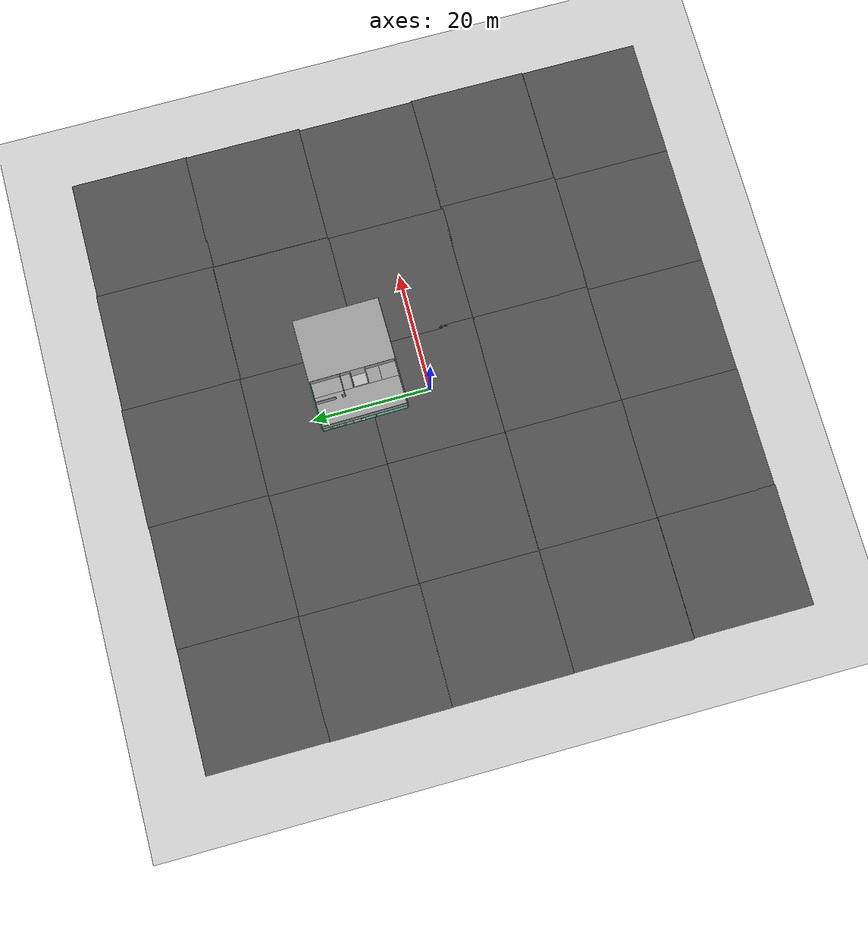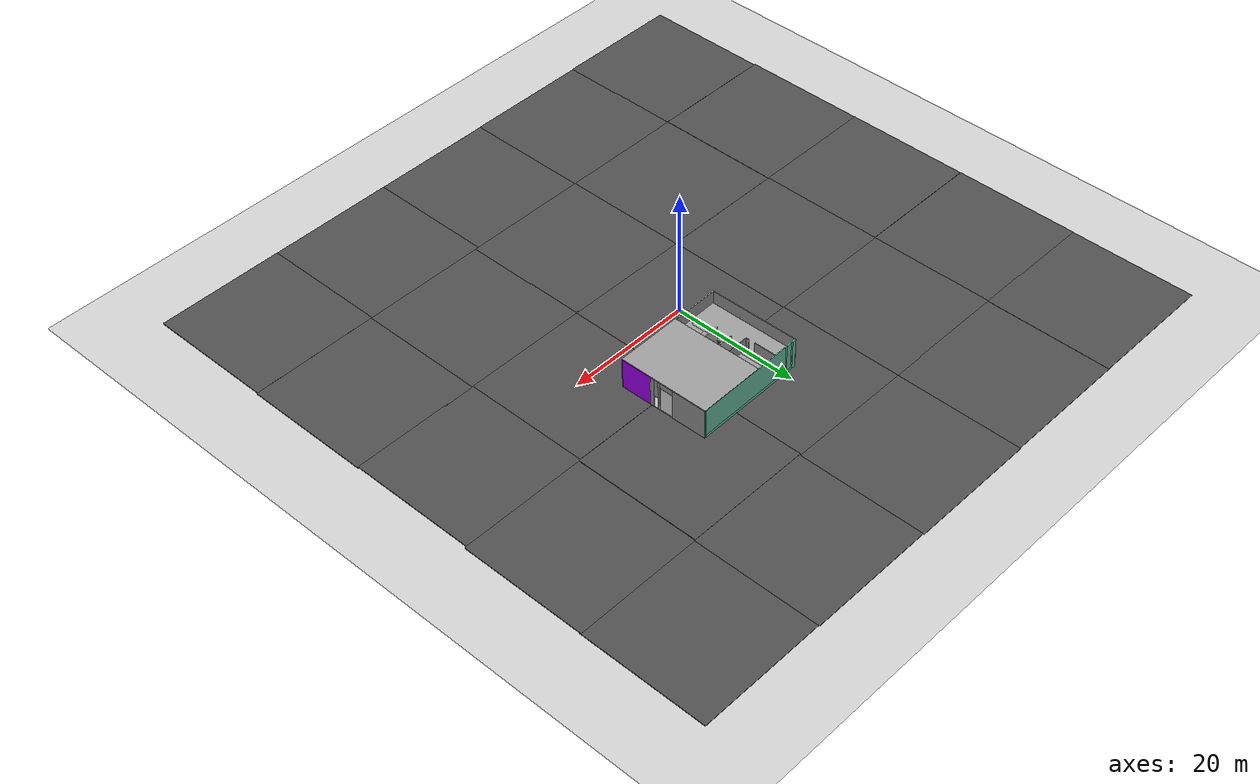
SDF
<sdf version="1.6">
 <world name="default">
  <light name="sun" type="directional">
   <pose>0 0 10 0 -0 0</pose>
   <diffuse>0.8 0.8 0.8 1</diffuse>
   <specular>0.2 0.2 0.2 1</specular>
   <attenuation>
    <range>1000</range>
    <constant>0.9</constant>
    <linear>0.01</linear>
    <quadratic>0.001</quadratic>
   </attenuation>
   <direction>-0.5 0.1 -0.9</direction>
   <spot><inner_angle>0</inner_angle><outer_angle>0</outer_angle><falloff>0</falloff></spot>
  </light>
  <model name="ground_plane">
   <static>1</static>
   <link name="link">
    <collision name="collision">
     <geometry><plane><normal>0 0 1</normal><size>100 100</size></plane></geometry>
     <surface><friction><ode><mu>100</mu><mu2>50</mu2></ode></friction></surface>
    </collision>
    <visual name="visual">
     <cast_shadows>0</cast_shadows>
     <geometry><plane><normal>0 0 1</normal><size>100 100</size></plane></geometry>
     <material>
      <script><uri>file://media/materials/scripts/gazebo.material</uri><name>Gazebo/Grey</name></script>
     </material>
    </visual>
   </link>
  </model>
  <gravity>0 0 -9.8</gravity>
  <magnetic_field>6e-06 2.3e-05 -4.2e-05</magnetic_field>
  <atmosphere type="adiabatic"/>
  <physics type="ode">
   <max_step_size>0.001</max_step_size>
   <real_time_factor>1</real_time_factor>
   <real_time_update_rate>1000</real_time_update_rate>
  </physics>
  <scene><ambient>0.4 0.4 0.4 1</ambient><background>0.7 0.7 0.7 1</background><shadows>1</shadows></scene>
  <spherical_coordinates>
   <surface_model>EARTH_WGS84</surface_model>
   <latitude_deg>0</latitude_deg>
   <longitude_deg>0</longitude_deg>
   <elevation>0</elevation>
   <heading_deg>0</heading_deg>
  </spherical_coordinates>
  <model name="asphalt_plane">
   <static>1</static>
   <link name="link">
    <collision name="collision"><geometry><box><size>20 20 0.1</size></box></geometry></collision>
    <visual name="visual">
     <cast_shadows>0</cast_shadows>
     <geometry><box><size>20 20 0.1</size></box></geometry>
     <material>
      <script>
       <uri>model://asphalt_plane/materials/scripts</uri>
       <uri>model://asphalt_plane/materials/textures</uri>
       <name>vrc/asphalt</name>
      </script>
     </material>
    </visual>
   </link>
   <pose>39.4659 -39.9201 0 0 -0 0</pose>
  </model>
  <model name="asphalt_plane_0">
   <static>1</static>
   <link name="link">
    <collision name="collision"><geometry><box><size>20 20 0.1</size></box></geometry></collision>
    <visual name="visual">
     <cast_shadows>0</cast_shadows>
     <geometry><box><size>20 20 0.1</size></box></geometry>
     <material>
      <script>
       <uri>model://asphalt_plane/materials/scripts</uri>
       <uri>model://asphalt_plane/materials/textures</uri>
       <name>vrc/asphalt</name>
      </script>
     </material>
    </visual>
   </link>
   <pose>19.4794 -39.8962 0 0 -0 0</pose>
  </model>
  <model name="asphalt_plane_1">
   <static>1</static>
   <link name="link">
    <collision name="collision"><geometry><box><size>20 20 0.1</size></box></geometry></collision>
    <visual name="visual">
     <cast_shadows>0</cast_shadows>
     <geometry><box><size>20 20 0.1</size></box></geometry>
     <material>
      <script>
       <uri>model://asphalt_plane/materials/scripts</uri>
       <uri>model://asphalt_plane/materials/textures</uri>
       <name>vrc/asphalt</name>
      </script>
     </material>
    </visual>
   </link>
   <pose>-0.493405 -39.8752 0 0 -0 0</pose>
  </model>
  <model name="asphalt_plane_2">
   <static>1</static>
   <link name="link">
    <collision name="collision"><geometry><box><size>20 20 0.1</size></box></geometry></collision>
    <visual name="visual">
     <cast_shadows>0</cast_shadows>
     <geometry><box><size>20 20 0.1</size></box></geometry>
     <material>
      <script>
       <uri>model://asphalt_plane/materials/scripts</uri>
       <uri>model://asphalt_plane/materials/textures</uri>
       <name>vrc/asphalt</name>
      </script>
     </material>
    </visual>
   </link>
   <pose>-19.8944 -39.9337 0 0 -0 0</pose>
  </model>
  <model name="asphalt_plane_3">
   <static>1</static>
   <link name="link">
    <collision name="collision"><geometry><box><size>20 20 0.1</size></box></geometry></collision>
    <visual name="visual">
     <cast_shadows>0</cast_shadows>
     <geometry><box><size>20 20 0.1</size></box></geometry>
     <material>
      <script>
       <uri>model://asphalt_plane/materials/scripts</uri>
       <uri>model://asphalt_plane/materials/textures</uri>
       <name>vrc/asphalt</name>
      </script>
     </material>
    </visual>
   </link>
   <pose>-39.7698 -40.0398 0 0 -0 0</pose>
  </model>
  <model name="asphalt_plane_4">
   <static>1</static>
   <link name="link">
    <collision name="collision"><geometry><box><size>20 20 0.1</size></box></geometry></collision>
    <visual name="visual">
     <cast_shadows>0</cast_shadows>
     <geometry><box><size>20 20 0.1</size></box></geometry>
     <material>
      <script>
       <uri>model://asphalt_plane/materials/scripts</uri>
       <uri>model://asphalt_plane/materials/textures</uri>
       <name>vrc/asphalt</name>
      </script>
     </material>
    </visual>
   </link>
   <pose>-39.9499 -20.0127 0 0 -0 0</pose>
  </model>
  <model name="asphalt_plane_5">
   <static>1</static>
   <link name="link">
    <collision name="collision"><geometry><box><size>20 20 0.1</size></box></geometry></collision>
    <visual name="visual">
     <cast_shadows>0</cast_shadows>
     <geometry><box><size>20 20 0.1</size></box></geometry>
     <material>
      <script>
       <uri>model://asphalt_plane/materials/scripts</uri>
       <uri>model://asphalt_plane/materials/textures</uri>
       <name>vrc/asphalt</name>
      </script>
     </material>
    </visual>
   </link>
   <pose>-39.9865 -0.075574 0 0 -0 0</pose>
  </model>
  <model name="asphalt_plane_6">
   <static>1</static>
   <link name="link">
    <collision name="collision"><geometry><box><size>20 20 0.1</size></box></geometry></collision>
    <visual name="visual">
     <cast_shadows>0</cast_shadows>
     <geometry><box><size>20 20 0.1</size></box></geometry>
     <material>
      <script>
       <uri>model://asphalt_plane/materials/scripts</uri>
       <uri>model://asphalt_plane/materials/textures</uri>
       <name>vrc/asphalt</name>
      </script>
     </material>
    </visual>
   </link>
   <pose>-40.0201 19.9683 0 0 -0 0</pose>
  </model>
  <model name="asphalt_plane_7">
   <static>1</static>
   <link name="link">
    <collision name="collision"><geometry><box><size>20 20 0.1</size></box></geometry></collision>
    <visual name="visual">
     <cast_shadows>0</cast_shadows>
     <geometry><box><size>20 20 0.1</size></box></geometry>
     <material>
      <script>
       <uri>model://asphalt_plane/materials/scripts</uri>
       <uri>model://asphalt_plane/materials/textures</uri>
       <name>vrc/asphalt</name>
      </script>
     </material>
    </visual>
   </link>
   <pose>-39.9603 39.8517 0 0 -0 0</pose>
  </model>
  <model name="asphalt_plane_8">
   <static>1</static>
   <link name="link">
    <collision name="collision"><geometry><box><size>20 20 0.1</size></box></geometry></collision>
    <visual name="visual">
     <cast_shadows>0</cast_shadows>
     <geometry><box><size>20 20 0.1</size></box></geometry>
     <material>
      <script>
       <uri>model://asphalt_plane/materials/scripts</uri>
       <uri>model://asphalt_plane/materials/textures</uri>
       <name>vrc/asphalt</name>
      </script>
     </material>
    </visual>
   </link>
   <pose>-19.9207 -19.9878 0 0 -0 0</pose>
  </model>
  <model name="asphalt_plane_9">
   <static>1</static>
   <link name="link">
    <collision name="collision"><geometry><box><size>20 20 0.1</size></box></geometry></collision>
    <visual name="visual">
     <cast_shadows>0</cast_shadows>
     <geometry><box><size>20 20 0.1</size></box></geometry>
     <material>
      <script>
       <uri>model://asphalt_plane/materials/scripts</uri>
       <uri>model://asphalt_plane/materials/textures</uri>
       <name>vrc/asphalt</name>
      </script>
     </material>
    </visual>
   </link>
   <pose>-20.0347 0.02392 0 0 -0 0</pose>
  </model>
  <model name="asphalt_plane_10">
   <static>1</static>
   <link name="link">
    <collision name="collision"><geometry><box><size>20 20 0.1</size></box></geometry></collision>
    <visual name="visual">
     <cast_shadows>0</cast_shadows>
     <geometry><box><size>20 20 0.1</size></box></geometry>
     <material>
      <script>
       <uri>model://asphalt_plane/materials/scripts</uri>
       <uri>model://asphalt_plane/materials/textures</uri>
       <name>vrc/asphalt</name>
      </script>
     </material>
    </visual>
   </link>
   <pose>-20.0686 19.9917 0 0 -0 0</pose>
  </model>
  <model name="asphalt_plane_11">
   <static>1</static>
   <link name="link">
    <collision name="collision"><geometry><box><size>20 20 0.1</size></box></geometry></collision>
    <visual name="visual">
     <cast_shadows>0</cast_shadows>
     <geometry><box><size>20 20 0.1</size></box></geometry>
     <material>
      <script>
       <uri>model://asphalt_plane/materials/scripts</uri>
       <uri>model://asphalt_plane/materials/textures</uri>
       <name>vrc/asphalt</name>
      </script>
     </material>
    </visual>
   </link>
   <pose>-19.9462 39.8802 0 0 -0 0</pose>
  </model>
  <model name="asphalt_plane_12">
   <static>1</static>
   <link name="link">
    <collision name="collision"><geometry><box><size>20 20 0.1</size></box></geometry></collision>
    <visual name="visual">
     <cast_shadows>0</cast_shadows>
     <geometry><box><size>20 20 0.1</size></box></geometry>
     <material>
      <script>
       <uri>model://asphalt_plane/materials/scripts</uri>
       <uri>model://asphalt_plane/materials/textures</uri>
       <name>vrc/asphalt</name>
      </script>
     </material>
    </visual>
   </link>
   <pose>0.035217 -19.9343 0 0 -0 0</pose>
  </model>
  <model name="asphalt_plane_13">
   <static>1</static>
   <link name="link">
    <collision name="collision"><geometry><box><size>20 20 0.1</size></box></geometry></collision>
    <visual name="visual">
     <cast_shadows>0</cast_shadows>
     <geometry><box><size>20 20 0.1</size></box></geometry>
     <material>
      <script>
       <uri>model://asphalt_plane/materials/scripts</uri>
       <uri>model://asphalt_plane/materials/textures</uri>
       <name>vrc/asphalt</name>
      </script>
     </material>
    </visual>
   </link>
   <pose>-0.034302 0.009218 0 0 -0 0</pose>
  </model>
  <model name="asphalt_plane_14">
   <static>1</static>
   <link name="link">
    <collision name="collision"><geometry><box><size>20 20 0.1</size></box></geometry></collision>
    <visual name="visual">
     <cast_shadows>0</cast_shadows>
     <geometry><box><size>20 20 0.1</size></box></geometry>
     <material>
      <script>
       <uri>model://asphalt_plane/materials/scripts</uri>
       <uri>model://asphalt_plane/materials/textures</uri>
       <name>vrc/asphalt</name>
      </script>
     </material>
    </visual>
   </link>
   <pose>-0.106234 19.978 0 0 -0 0</pose>
  </model>
  <model name="asphalt_plane_15">
   <static>1</static>
   <link name="link">
    <collision name="collision"><geometry><box><size>20 20 0.1</size></box></geometry></collision>
    <visual name="visual">
     <cast_shadows>0</cast_shadows>
     <geometry><box><size>20 20 0.1</size></box></geometry>
     <material>
      <script>
       <uri>model://asphalt_plane/materials/scripts</uri>
       <uri>model://asphalt_plane/materials/textures</uri>
       <name>vrc/asphalt</name>
      </script>
     </material>
    </visual>
   </link>
   <pose>-0.059808 39.9742 0 0 -0 0</pose>
  </model>
  <model name="asphalt_plane_16">
   <static>1</static>
   <link name="link">
    <collision name="collision"><geometry><box><size>20 20 0.1</size></box></geometry></collision>
    <visual name="visual">
     <cast_shadows>0</cast_shadows>
     <geometry><box><size>20 20 0.1</size></box></geometry>
     <material>
      <script>
       <uri>model://asphalt_plane/materials/scripts</uri>
       <uri>model://asphalt_plane/materials/textures</uri>
       <name>vrc/asphalt</name>
      </script>
     </material>
    </visual>
   </link>
   <pose>39.6059 -19.911 0 0 -0 0</pose>
  </model>
  <model name="asphalt_plane_17">
   <static>1</static>
   <link name="link">
    <collision name="collision"><geometry><box><size>20 20 0.1</size></box></geometry></collision>
    <visual name="visual">
     <cast_shadows>0</cast_shadows>
     <geometry><box><size>20 20 0.1</size></box></geometry>
     <material>
      <script>
       <uri>model://asphalt_plane/materials/scripts</uri>
       <uri>model://asphalt_plane/materials/textures</uri>
       <name>vrc/asphalt</name>
      </script>
     </material>
    </visual>
   </link>
   <pose>19.9136 -20.0232 0 0 -0 0</pose>
  </model>
  <model name="asphalt_plane_18">
   <static>1</static>
   <link name="link">
    <collision name="collision"><geometry><box><size>20 20 0.1</size></box></geometry></collision>
    <visual name="visual">
     <cast_shadows>0</cast_shadows>
     <geometry><box><size>20 20 0.1</size></box></geometry>
     <material>
      <script>
       <uri>model://asphalt_plane/materials/scripts</uri>
       <uri>model://asphalt_plane/materials/textures</uri>
       <name>vrc/asphalt</name>
      </script>
     </material>
    </visual>
   </link>
   <pose>39.4513 -0.05702 0 0 -0 0</pose>
  </model>
  <model name="asphalt_plane_19">
   <static>1</static>
   <link name="link">
    <collision name="collision"><geometry><box><size>20 20 0.1</size></box></geometry></collision>
    <visual name="visual">
     <cast_shadows>0</cast_shadows>
     <geometry><box><size>20 20 0.1</size></box></geometry>
     <material>
      <script>
       <uri>model://asphalt_plane/materials/scripts</uri>
       <uri>model://asphalt_plane/materials/textures</uri>
       <name>vrc/asphalt</name>
      </script>
     </material>
    </visual>
   </link>
   <pose>19.534 -0.225439 0 0 -0 0</pose>
  </model>
  <model name="asphalt_plane_20">
   <static>1</static>
   <link name="link">
    <collision name="collision"><geometry><box><size>20 20 0.1</size></box></geometry></collision>
    <visual name="visual">
     <cast_shadows>0</cast_shadows>
     <geometry><box><size>20 20 0.1</size></box></geometry>
     <material>
      <script>
       <uri>model://asphalt_plane/materials/scripts</uri>
       <uri>model://asphalt_plane/materials/textures</uri>
       <name>vrc/asphalt</name>
      </script>
     </material>
    </visual>
   </link>
   <pose>19.7215 19.81 0 0 -0 0</pose>
  </model>
  <model name="asphalt_plane_21">
   <static>1</static>
   <link name="link">
    <collision name="collision"><geometry><box><size>20 20 0.1</size></box></geometry></collision>
    <visual name="visual">
     <cast_shadows>0</cast_shadows>
     <geometry><box><size>20 20 0.1</size></box></geometry>
     <material>
      <script>
       <uri>model://asphalt_plane/materials/scripts</uri>
       <uri>model://asphalt_plane/materials/textures</uri>
       <name>vrc/asphalt</name>
      </script>
     </material>
    </visual>
   </link>
   <pose>39.7617 19.8774 0 0 -0 0</pose>
  </model>
  <model name="asphalt_plane_22">
   <static>1</static>
   <link name="link">
    <collision name="collision"><geometry><box><size>20 20 0.1</size></box></geometry></collision>
    <visual name="visual">
     <cast_shadows>0</cast_shadows>
     <geometry><box><size>20 20 0.1</size></box></geometry>
     <material>
      <script>
       <uri>model://asphalt_plane/materials/scripts</uri>
       <uri>model://asphalt_plane/materials/textures</uri>
       <name>vrc/asphalt</name>
      </script>
     </material>
    </visual>
   </link>
   <pose>19.8697 39.8274 0 0 -0 0</pose>
  </model>
  <model name="asphalt_plane_23">
   <static>1</static>
   <link name="link">
    <collision name="collision"><geometry><box><size>20 20 0.1</size></box></geometry></collision>
    <visual name="visual">
     <cast_shadows>0</cast_shadows>
     <geometry><box><size>20 20 0.1</size></box></geometry>
     <material>
      <script>
       <uri>model://asphalt_plane/materials/scripts</uri>
       <uri>model://asphalt_plane/materials/textures</uri>
       <name>vrc/asphalt</name>
      </script>
     </material>
    </visual>
   </link>
   <pose>39.8376 39.6964 0 0 -0 0</pose>
  </model>
  <model name="osrf_elevator">
   <link name="Wall_0">
    <pose>-7.17647 0.013004 0 0 -0 1.57174</pose>
    <visual name="Wall_0_Visual_0">
     <meta><layer>0</layer></meta>
     <pose>-8.72596 0 2.4385 0 -0 0</pose>
     <geometry><box><size>0.663656 0.15 4.877</size></box></geometry>
     <material>
      <script><uri>file://media/materials/scripts/gazebo.material</uri><name>Gazebo/Grey</name></script>
      <ambient>0.435294 0.796078 0.67451 1</ambient>
     </material>
    </visual>
    <collision name="Wall_0_Collision_0">
     <geometry><box><size>0.663656 0.15 4.877</size></box></geometry>
     <pose>-8.72596 0 2.4385 0 -0 0</pose>
    </collision>
    <visual name="Wall_0_Visual_1">
     <meta><layer>0</layer></meta>
     <pose>0.331828 0 0.25 0 -0 0</pose>
     <geometry><box><size>17.4519 0.15 0.5</size></box></geometry>
     <material>
      <script><uri>file://media/materials/scripts/gazebo.material</uri><name>Gazebo/Grey</name></script>
      <ambient>0.435294 0.796078 0.67451 1</ambient>
     </material>
    </visual>
    <collision name="Wall_0_Collision_1">
     <geometry><box><size>17.4519 0.15 0.5</size></box></geometry>
     <pose>0.331828 0 0.25 0 -0 0</pose>
    </collision>
    <visual name="Wall_0_Visual_2">
     <meta><layer>0</layer></meta>
     <pose>-7.67281 0 2.6885 0 -0 0</pose>
     <geometry><box><size>0.816657 0.15 4.377</size></box></geometry>
     <material>
      <script><uri>file://media/materials/scripts/gazebo.material</uri><name>Gazebo/Grey</name></script>
      <ambient>0.435294 0.796078 0.67451 1</ambient>
     </material>
    </visual>
    <collision name="Wall_0_Collision_2">
     <geometry><box><size>0.816657 0.15 4.377</size></box></geometry>
     <pose>-7.67281 0 2.6885 0 -0 0</pose>
    </collision>
    <visual name="Wall_0_Visual_3">
     <meta><layer>0</layer></meta>
     <pose>1.05709 0 2.6885 0 -0 0</pose>
     <geometry><box><size>16.0014 0.15 4.377</size></box></geometry>
     <material>
      <script><uri>file://media/materials/scripts/gazebo.material</uri><name>Gazebo/Grey</name></script>
      <ambient>0.435294 0.796078 0.67451 1</ambient>
     </material>
    </visual>
    <collision name="Wall_0_Collision_3">
     <geometry><box><size>16.0014 0.15 4.377</size></box></geometry>
     <pose>1.05709 0 2.6885 0 -0 0</pose>
    </collision>
    <visual name="Wall_0_Visual_4">
     <meta><layer>0</layer></meta>
     <pose>-8.23763 0 3.6885 0 -0 0</pose>
     <geometry><box><size>0.313 0.15 2.377</size></box></geometry>
     <material>
      <script><uri>file://media/materials/scripts/gazebo.material</uri><name>Gazebo/Grey</name></script>
      <ambient>0.435294 0.796078 0.67451 1</ambient>
     </material>
    </visual>
    <collision name="Wall_0_Collision_4">
     <geometry><box><size>0.313 0.15 2.377</size></box></geometry>
     <pose>-8.23763 0 3.6885 0 -0 0</pose>
    </collision>
    <visual name="Wall_0_Visual_5">
     <meta><layer>0</layer></meta>
     <pose>-7.10405 0 3.6885 0 -0 0</pose>
     <geometry><box><size>0.320861 0.15 2.377</size></box></geometry>
     <material>
      <script><uri>file://media/materials/scripts/gazebo.material</uri><name>Gazebo/Grey</name></script>
      <ambient>0.435294 0.796078 0.67451 1</ambient>
     </material>
    </visual>
    <collision name="Wall_0_Collision_5">
     <geometry><box><size>0.320861 0.15 2.377</size></box></geometry>
     <pose>-7.10405 0 3.6885 0 -0 0</pose>
    </collision>
   </link>
   <link name="Wall_10">
    <pose>3.11003 -4.9485 0 0 -0 0</pose>
    <visual name="Wall_10_Visual_0">
     <meta><layer>0</layer></meta>
     <pose>-1.73626 0 1.3715 0 -0 0</pose>
     <geometry><box><size>4.52747 0.15 2.743</size></box></geometry>
     <material>
      <script><uri>file://media/materials/scripts/gazebo.material</uri><name>Gazebo/Grey</name></script>
      <ambient>0 0.666667 0 1</ambient>
     </material>
    </visual>
    <collision name="Wall_10_Collision_0">
     <geometry><box><size>4.52747 0.15 2.743</size></box></geometry>
     <pose>-1.73626 0 1.3715 0 -0 0</pose>
    </collision>
    <visual name="Wall_10_Visual_1">
     <meta><layer>0</layer></meta>
     <pose>2.58694 0 1.3715 0 -0 0</pose>
     <geometry><box><size>2.82611 0.15 2.743</size></box></geometry>
     <material>
      <script><uri>file://media/materials/scripts/gazebo.material</uri><name>Gazebo/Grey</name></script>
      <ambient>0 0.666667 0 1</ambient>
     </material>
    </visual>
    <collision name="Wall_10_Collision_1">
     <geometry><box><size>2.82611 0.15 2.743</size></box></geometry>
     <pose>2.58694 0 1.3715 0 -0 0</pose>
    </collision>
    <visual name="Wall_10_Visual_2">
     <meta><layer>0</layer></meta>
     <pose>0.85068 0 2.3715 0 -0 0</pose>
     <geometry><box><size>0.646413 0.15 0.743</size></box></geometry>
     <material>
      <script><uri>file://media/materials/scripts/gazebo.material</uri><name>Gazebo/Grey</name></script>
      <ambient>0 0.666667 0 1</ambient>
     </material>
    </visual>
    <collision name="Wall_10_Collision_2">
     <geometry><box><size>0.646413 0.15 0.743</size></box></geometry>
     <pose>0.85068 0 2.3715 0 -0 0</pose>
    </collision>
   </link>
   <link name="Wall_14">
    <pose>1.83803 -6.9775 0 0 -0 1.5708</pose>
    <visual name="Wall_14_Visual_0">
     <meta><layer>0</layer></meta>
     <pose>-0.387674 0 1.3715 0 -0 0</pose>
     <geometry><box><size>3.41138 0.15 2.743</size></box></geometry>
     <material>
      <script><uri>file://media/materials/scripts/gazebo.material</uri><name>Gazebo/Grey</name></script>
      <ambient>1 1 1 1</ambient>
     </material>
    </visual>
    <collision name="Wall_14_Collision_0">
     <geometry><box><size>3.41138 0.15 2.743</size></box></geometry>
     <pose>-0.387674 0 1.3715 0 -0 0</pose>
    </collision>
    <visual name="Wall_14_Visual_1">
     <meta><layer>0</layer></meta>
     <pose>2.00133 0 1.3715 0 -0 0</pose>
     <geometry><box><size>0.184063 0.15 2.743</size></box></geometry>
     <material>
      <script><uri>file://media/materials/scripts/gazebo.material</uri><name>Gazebo/Grey</name></script>
      <ambient>1 1 1 1</ambient>
     </material>
    </visual>
    <collision name="Wall_14_Collision_1">
     <geometry><box><size>0.184063 0.15 2.743</size></box></geometry>
     <pose>2.00133 0 1.3715 0 -0 0</pose>
    </collision>
    <visual name="Wall_14_Visual_2">
     <meta><layer>0</layer></meta>
     <pose>1.61366 0 2.3715 0 -0 0</pose>
     <geometry><box><size>0.591285 0.15 0.743</size></box></geometry>
     <material>
      <script><uri>file://media/materials/scripts/gazebo.material</uri><name>Gazebo/Grey</name></script>
      <ambient>1 1 1 1</ambient>
     </material>
    </visual>
    <collision name="Wall_14_Collision_2">
     <geometry><box><size>0.591285 0.15 0.743</size></box></geometry>
     <pose>1.61366 0 2.3715 0 -0 0</pose>
    </collision>
   </link>
   <link name="Wall_16">
    <collision name="Wall_16_Collision">
     <geometry><box><size>5.12727 0.15 2.743</size></box></geometry>
     <pose>0 0 1.3715 0 -0 0</pose>
    </collision>
    <visual name="Wall_16_Visual">
     <meta><layer>0</layer></meta>
     <pose>0 0 1.3715 0 -0 0</pose>
     <geometry><box><size>5.12727 0.15 2.743</size></box></geometry>
     <material>
      <script><uri>file://media/materials/scripts/gazebo.material</uri><name>Gazebo/Grey</name></script>
      <ambient>1 1 1 1</ambient>
     </material>
    </visual>
    <pose>-4.68247 -1.4425 0 0 -0 0</pose>
   </link>
   <link name="Wall_17">
    <pose>-2.19097 -3.185 0 0 0 -1.56907</pose>
    <visual name="Wall_17_Visual_0">
     <meta><layer>0</layer></meta>
     <pose>-1.22855 0 1.3715 0 -0 0</pose>
     <geometry><box><size>1.17851 0.15 2.743</size></box></geometry>
     <material>
      <script><uri>file://media/materials/scripts/gazebo.material</uri><name>Gazebo/Grey</name></script>
      <ambient>1 1 1 1</ambient>
     </material>
    </visual>
    <collision name="Wall_17_Collision_0">
     <geometry><box><size>1.17851 0.15 2.743</size></box></geometry>
     <pose>-1.22855 0 1.3715 0 -0 0</pose>
    </collision>
    <visual name="Wall_17_Visual_1">
     <meta><layer>0</layer></meta>
     <pose>0.886237 0 1.3715 0 -0 0</pose>
     <geometry><box><size>1.86314 0.15 2.743</size></box></geometry>
     <material>
      <script><uri>file://media/materials/scripts/gazebo.material</uri><name>Gazebo/Grey</name></script>
      <ambient>1 1 1 1</ambient>
     </material>
    </visual>
    <collision name="Wall_17_Collision_1">
     <geometry><box><size>1.86314 0.15 2.743</size></box></geometry>
     <pose>0.886237 0 1.3715 0 -0 0</pose>
    </collision>
    <visual name="Wall_17_Visual_2">
     <meta><layer>0</layer></meta>
     <pose>1.18873 0 1.3715 0 -0 0</pose>
     <geometry><box><size>1.25815 0.15 2.743</size></box></geometry>
     <material>
      <script><uri>file://media/materials/scripts/gazebo.material</uri><name>Gazebo/Grey</name></script>
      <ambient>1 1 1 1</ambient>
     </material>
    </visual>
    <collision name="Wall_17_Collision_2">
     <geometry><box><size>1.25815 0.15 2.743</size></box></geometry>
     <pose>1.18873 0 1.3715 0 -0 0</pose>
    </collision>
    <visual name="Wall_17_Visual_3">
     <meta><layer>0</layer></meta>
     <pose>-0.345304 0 2.3715 0 -0 0</pose>
     <geometry><box><size>0.587991 0.15 0.743</size></box></geometry>
     <material>
      <script><uri>file://media/materials/scripts/gazebo.material</uri><name>Gazebo/Grey</name></script>
      <ambient>1 1 1 1</ambient>
     </material>
    </visual>
    <collision name="Wall_17_Collision_3">
     <geometry><box><size>0.587991 0.15 0.743</size></box></geometry>
     <pose>-0.345304 0 2.3715 0 -0 0</pose>
    </collision>
   </link>
   <link name="Wall_18">
    <collision name="Wall_18_Collision">
     <geometry><box><size>5 0.15 2.743</size></box></geometry>
     <pose>0 0 1.3715 0 -0 0</pose>
    </collision>
    <visual name="Wall_18_Visual">
     <meta><layer>0</layer></meta>
     <pose>0 0 1.3715 0 -0 0</pose>
     <geometry><box><size>5 0.15 2.743</size></box></geometry>
     <material>
      <script><uri>file://media/materials/scripts/gazebo.material</uri><name>Gazebo/Grey</name></script>
      <ambient>1 1 1 1</ambient>
     </material>
    </visual>
    <pose>-4.61297 -4.9275 0 0 -0 3.14159</pose>
   </link>
   <link name="Wall_20">
    <collision name="Wall_20_Collision">
     <geometry><box><size>2.88731 0.15 2.743</size></box></geometry>
     <pose>0 0 1.3715 0 -0 0</pose>
    </collision>
    <visual name="Wall_20_Visual">
     <meta><layer>0</layer></meta>
     <pose>0 0 1.3715 0 -0 0</pose>
     <geometry><box><size>2.88731 0.15 2.743</size></box></geometry>
     <material>
      <script><uri>file://media/materials/scripts/gazebo.material</uri><name>Gazebo/Grey</name></script>
      <ambient>1 1 1 1</ambient>
     </material>
    </visual>
    <pose>5.74253 1.037 0 0 0 -3.1383</pose>
   </link>
   <link name="Wall_21">
    <pose>4.37403 -1.8925 0 0 0 -1.5708</pose>
    <visual name="Wall_21_Visual_0">
     <meta><layer>0</layer></meta>
     <pose>-2.34405 0 1.3715 0 -0 0</pose>
     <geometry><box><size>1.3119 0.15 2.743</size></box></geometry>
     <material>
      <script><uri>file://media/materials/scripts/gazebo.material</uri><name>Gazebo/Grey</name></script>
      <ambient>1 1 1 1</ambient>
     </material>
    </visual>
    <collision name="Wall_21_Collision_0">
     <geometry><box><size>1.3119 0.15 2.743</size></box></geometry>
     <pose>-2.34405 0 1.3715 0 -0 0</pose>
    </collision>
    <visual name="Wall_21_Visual_1">
     <meta><layer>0</layer></meta>
     <pose>-0.970323 0 1.3715 0 -0 0</pose>
     <geometry><box><size>0.213619 0.15 2.743</size></box></geometry>
     <material>
      <script><uri>file://media/materials/scripts/gazebo.material</uri><name>Gazebo/Grey</name></script>
      <ambient>1 1 1 1</ambient>
     </material>
    </visual>
    <collision name="Wall_21_Collision_1">
     <geometry><box><size>0.213619 0.15 2.743</size></box></geometry>
     <pose>-0.970323 0 1.3715 0 -0 0</pose>
    </collision>
    <visual name="Wall_21_Visual_2">
     <meta><layer>0</layer></meta>
     <pose>0.938748 0 1.3715 0 -0 0</pose>
     <geometry><box><size>2.36558 0.15 2.743</size></box></geometry>
     <material>
      <script><uri>file://media/materials/scripts/gazebo.material</uri><name>Gazebo/Grey</name></script>
      <ambient>1 1 1 1</ambient>
     </material>
    </visual>
    <collision name="Wall_21_Collision_2">
     <geometry><box><size>2.36558 0.15 2.743</size></box></geometry>
     <pose>0.938748 0 1.3715 0 -0 0</pose>
    </collision>
    <visual name="Wall_21_Visual_3">
     <meta><layer>0</layer></meta>
     <pose>2.89346 0 1.3715 0 -0 0</pose>
     <geometry><box><size>0.213086 0.15 2.743</size></box></geometry>
     <material>
      <script><uri>file://media/materials/scripts/gazebo.material</uri><name>Gazebo/Grey</name></script>
      <ambient>1 1 1 1</ambient>
     </material>
    </visual>
    <collision name="Wall_21_Collision_3">
     <geometry><box><size>0.213086 0.15 2.743</size></box></geometry>
     <pose>2.89346 0 1.3715 0 -0 0</pose>
    </collision>
    <visual name="Wall_21_Visual_4">
     <meta><layer>0</layer></meta>
     <pose>-1.38262 0 2.3715 0 -0 0</pose>
     <geometry><box><size>0.610969 0.15 0.743</size></box></geometry>
     <material>
      <script><uri>file://media/materials/scripts/gazebo.material</uri><name>Gazebo/Grey</name></script>
      <ambient>1 1 1 1</ambient>
     </material>
    </visual>
    <collision name="Wall_21_Collision_4">
     <geometry><box><size>0.610969 0.15 0.743</size></box></geometry>
     <pose>-1.38262 0 2.3715 0 -0 0</pose>
    </collision>
    <visual name="Wall_21_Visual_5">
     <meta><layer>0</layer></meta>
     <pose>-0.553779 0 2.3715 0 -0 0</pose>
     <geometry><box><size>0.61947 0.15 0.743</size></box></geometry>
     <material>
      <script><uri>file://media/materials/scripts/gazebo.material</uri><name>Gazebo/Grey</name></script>
      <ambient>1 1 1 1</ambient>
     </material>
    </visual>
    <collision name="Wall_21_Collision_5">
     <geometry><box><size>0.61947 0.15 0.743</size></box></geometry>
     <pose>-0.553779 0 2.3715 0 -0 0</pose>
    </collision>
    <visual name="Wall_21_Visual_6">
     <meta><layer>0</layer></meta>
     <pose>2.45423 0 2.3715 0 -0 0</pose>
     <geometry><box><size>0.665375 0.15 0.743</size></box></geometry>
     <material>
      <script><uri>file://media/materials/scripts/gazebo.material</uri><name>Gazebo/Grey</name></script>
      <ambient>1 1 1 1</ambient>
     </material>
    </visual>
    <collision name="Wall_21_Collision_6">
     <geometry><box><size>0.665375 0.15 0.743</size></box></geometry>
     <pose>2.45423 0 2.3715 0 -0 0</pose>
    </collision>
   </link>
   <link name="Wall_23">
    <collision name="Wall_23_Collision">
     <geometry><box><size>2.75 0.15 2.743</size></box></geometry>
     <pose>0 0 1.3715 0 -0 0</pose>
    </collision>
    <visual name="Wall_23_Visual">
     <meta><layer>0</layer></meta>
     <pose>0 0 1.3715 0 -0 0</pose>
     <geometry><box><size>2.75 0.15 2.743</size></box></geometry>
     <material>
      <script><uri>file://media/materials/scripts/gazebo.material</uri><name>Gazebo/Grey</name></script>
      <ambient>1 1 1 1</ambient>
     </material>
    </visual>
    <pose>5.74203 -2.9565 0 0 -0 0</pose>
   </link>
   <link name="Wall_25">
    <collision name="Wall_25_Collision">
     <geometry><box><size>2.75 0.15 2.743</size></box></geometry>
     <pose>0 0 1.3715 0 -0 0</pose>
    </collision>
    <visual name="Wall_25_Visual">
     <meta><layer>0</layer></meta>
     <pose>0 0 1.3715 0 -0 0</pose>
     <geometry><box><size>2.75 0.15 2.743</size></box></geometry>
     <material>
      <script><uri>file://media/materials/scripts/gazebo.material</uri><name>Gazebo/Grey</name></script>
      <ambient>1 1 1 1</ambient>
     </material>
    </visual>
    <pose>5.76203 -0.932496 0 0 -0 0</pose>
   </link>
   <link name="Wall_27">
    <collision name="Wall_27_Collision">
     <geometry><box><size>4 0.15 2.743</size></box></geometry>
     <pose>0 0 1.3715 0 -0 0</pose>
    </collision>
    <visual name="Wall_27_Visual">
     <meta><layer>0</layer></meta>
     <pose>0 0 1.3715 0 -0 0</pose>
     <geometry><box><size>4 0.15 2.743</size></box></geometry>
     <material>
      <script><uri>file://media/materials/scripts/gazebo.material</uri><name>Gazebo/Grey</name></script>
      <ambient>1 1 1 1</ambient>
     </material>
    </visual>
    <pose>4.75503 -7.0125 0 0 -0 1.5708</pose>
   </link>
   <link name="Wall_29">
    <collision name="Wall_29_Collision">
     <geometry><box><size>1.39187 0.15 4.877</size></box></geometry>
     <pose>0 0 2.4385 0 -0 0</pose>
    </collision>
    <visual name="Wall_29_Visual">
     <meta><layer>0</layer></meta>
     <pose>0 0 2.4385 0 -0 0</pose>
     <geometry><box><size>1.39187 0.15 4.877</size></box></geometry>
     <material>
      <script><uri>file://media/materials/scripts/gazebo.material</uri><name>Gazebo/Grey</name></script>
      <ambient>0.996078 0.47451 0.0196078 1</ambient>
     </material>
    </visual>
    <pose>-6.49697 4.1045 0 0 -0 0</pose>
   </link>
   <link name="Wall_30">
    <collision name="Wall_30_Collision">
     <geometry><box><size>3 0.15 4.877</size></box></geometry>
     <pose>0 0 2.4385 0 -0 0</pose>
    </collision>
    <visual name="Wall_30_Visual">
     <meta><layer>0</layer></meta>
     <pose>0 0 2.4385 0 -0 0</pose>
     <geometry><box><size>3 0.15 4.877</size></box></geometry>
     <material>
      <script><uri>file://media/materials/scripts/gazebo.material</uri><name>Gazebo/Grey</name></script>
      <ambient>1 1 1 1</ambient>
     </material>
    </visual>
    <pose>-5.87597 5.5295 0 0 -0 1.5708</pose>
   </link>
   <link name="Wall_31">
    <pose>-6.50397 6.9525 0 0 0 -3.13841</pose>
    <visual name="Wall_31_Visual_0">
     <meta><layer>0</layer></meta>
     <pose>-0.567544 0 2.4385 0 -0 0</pose>
     <geometry><box><size>0.271575 0.15 4.877</size></box></geometry>
     <material>
      <script><uri>file://media/materials/scripts/gazebo.material</uri><name>Gazebo/Grey</name></script>
      <ambient>1 1 1 1</ambient>
     </material>
    </visual>
    <collision name="Wall_31_Collision_0">
     <geometry><box><size>0.271575 0.15 4.877</size></box></geometry>
     <pose>-0.567544 0 2.4385 0 -0 0</pose>
    </collision>
    <visual name="Wall_31_Visual_1">
     <meta><layer>0</layer></meta>
     <pose>0.441678 0 2.4385 0 -0 0</pose>
     <geometry><box><size>0.523307 0.15 4.877</size></box></geometry>
     <material>
      <script><uri>file://media/materials/scripts/gazebo.material</uri><name>Gazebo/Grey</name></script>
      <ambient>1 1 1 1</ambient>
     </material>
    </visual>
    <collision name="Wall_31_Collision_1">
     <geometry><box><size>0.523307 0.15 4.877</size></box></geometry>
     <pose>0.441678 0 2.4385 0 -0 0</pose>
    </collision>
    <visual name="Wall_31_Visual_3">
     <meta><layer>0</layer></meta>
     <pose>-0.125866 0 3.4385 0 -0 0</pose>
     <geometry><box><size>0.611781 0.15 2.877</size></box></geometry>
     <material>
      <script><uri>file://media/materials/scripts/gazebo.material</uri><name>Gazebo/Grey</name></script>
      <ambient>1 1 1 1</ambient>
     </material>
    </visual>
    <collision name="Wall_31_Collision_3">
     <geometry><box><size>0.611781 0.15 2.877</size></box></geometry>
     <pose>-0.125866 0 3.4385 0 -0 0</pose>
    </collision>
   </link>
   <link name="Wall_35">
    <pose>-2.50997 8.9955 0 0 -0 0</pose>
    <visual name="Wall_35_Visual_0">
     <meta><layer>0</layer></meta>
     <pose>-1.92197 0 2.4385 0 -0 0</pose>
     <geometry><box><size>5.65606 0.15 4.877</size></box></geometry>
     <material>
      <script><uri>file://media/materials/scripts/gazebo.material</uri><name>Gazebo/Grey</name></script>
      <ambient>1 1 1 1</ambient>
     </material>
    </visual>
    <collision name="Wall_35_Collision_0">
     <geometry><box><size>5.65606 0.15 4.877</size></box></geometry>
     <pose>-1.92197 0 2.4385 0 -0 0</pose>
    </collision>
    <visual name="Wall_35_Visual_1">
     <meta><layer>0</layer></meta>
     <pose>3.22541 0 2.4385 0 -0 0</pose>
     <geometry><box><size>0.406701 0.15 4.877</size></box></geometry>
     <material>
      <script><uri>file://media/materials/scripts/gazebo.material</uri><name>Gazebo/Grey</name></script>
      <ambient>1 1 1 1</ambient>
     </material>
    </visual>
    <collision name="Wall_35_Collision_1">
     <geometry><box><size>0.406701 0.15 4.877</size></box></geometry>
     <pose>3.22541 0 2.4385 0 -0 0</pose>
    </collision>
    <visual name="Wall_35_Visual_2">
     <meta><layer>0</layer></meta>
     <pose>4.40208 0 2.4385 0 -0 0</pose>
     <geometry><box><size>0.695843 0.15 4.877</size></box></geometry>
     <material>
      <script><uri>file://media/materials/scripts/gazebo.material</uri><name>Gazebo/Grey</name></script>
      <ambient>1 1 1 1</ambient>
     </material>
    </visual>
    <collision name="Wall_35_Collision_2">
     <geometry><box><size>0.695843 0.15 4.877</size></box></geometry>
     <pose>4.40208 0 2.4385 0 -0 0</pose>
    </collision>
    <visual name="Wall_35_Visual_5">
     <meta><layer>0</layer></meta>
     <pose>3.74146 0 3.4385 0 -0 0</pose>
     <geometry><box><size>0.625391 0.15 2.877</size></box></geometry>
     <material>
      <script><uri>file://media/materials/scripts/gazebo.material</uri><name>Gazebo/Grey</name></script>
      <ambient>1 1 1 1</ambient>
     </material>
    </visual>
    <collision name="Wall_35_Collision_5">
     <geometry><box><size>0.625391 0.15 2.877</size></box></geometry>
     <pose>3.74146 0 3.4385 0 -0 0</pose>
    </collision>
    <visual name="Wall_35_Visual_6">
     <meta><layer>0</layer></meta>
     <pose>1.96406 0 4.4385 0 -0 0</pose>
     <geometry><box><size>2.116 0.15 0.877</size></box></geometry>
     <material>
      <script><uri>file://media/materials/scripts/gazebo.material</uri><name>Gazebo/Grey</name></script>
      <ambient>1 1 1 1</ambient>
     </material>
    </visual>
    <collision name="Wall_35_Collision_6">
     <geometry><box><size>2.116 0.15 0.877</size></box></geometry>
     <pose>1.96406 0 4.4385 0 -0 0</pose>
    </collision>
   </link>
   <link name="Wall_36">
    <collision name="Wall_36_Collision">
     <geometry><box><size>5.17 0.15 4.877</size></box></geometry>
     <pose>0 0 2.4385 0 -0 0</pose>
    </collision>
    <visual name="Wall_36_Visual">
     <meta><layer>0</layer></meta>
     <pose>0 0 2.4385 0 -0 0</pose>
     <geometry><box><size>5.17 0.15 4.877</size></box></geometry>
     <material>
      <script><uri>file://media/materials/scripts/gazebo.material</uri><name>Gazebo/Grey</name></script>
      <ambient>0.666667 0 1 1</ambient>
     </material>
    </visual>
    <pose>4.67503 8.9955 0 0 -0 0</pose>
   </link>
   <link name="Wall_5">
    <collision name="Wall_5_Collision">
     <geometry><box><size>18.1152 0.15 4.877</size></box></geometry>
     <pose>0 0 2.4385 0 -0 0</pose>
    </collision>
    <visual name="Wall_5_Visual">
     <meta><layer>0</layer></meta>
     <pose>0 0 2.4385 0 -0 0</pose>
     <geometry><box><size>18.1152 0.15 4.877</size></box></geometry>
     <material>
      <script><uri>file://media/materials/scripts/gazebo.material</uri><name>Gazebo/Grey</name></script>
      <ambient>1 1 1 1</ambient>
     </material>
    </visual>
    <pose>7.18353 0.013004 0 0 0 -1.57096</pose>
   </link>
   <link name="Wall_6">
    <pose>0.007029 -8.9695 0 0 -0 3.14159</pose>
    <visual name="Wall_6_Visual_0">
     <meta><layer>0</layer></meta>
     <pose>-3.60425 0 1.365 0 -0 0</pose>
     <geometry><box><size>7.2915 0.15 2.73</size></box></geometry>
     <material>
      <script><uri>file://media/materials/scripts/gazebo.material</uri><name>Gazebo/Grey</name></script>
      <ambient>0.435294 0.796078 0.67451 1</ambient>
     </material>
    </visual>
    <collision name="Wall_6_Collision_0">
     <geometry><box><size>7.2915 0.15 2.73</size></box></geometry>
     <pose>-3.60425 0 1.365 0 -0 0</pose>
    </collision>
    <visual name="Wall_6_Visual_1">
     <meta><layer>0</layer></meta>
     <pose>0.726241 0 1.365 0 -0 0</pose>
     <geometry><box><size>0.056893 0.15 2.73</size></box></geometry>
     <material>
      <script><uri>file://media/materials/scripts/gazebo.material</uri><name>Gazebo/Grey</name></script>
      <ambient>0.435294 0.796078 0.67451 1</ambient>
     </material>
    </visual>
    <collision name="Wall_6_Collision_1">
     <geometry><box><size>0.056893 0.15 2.73</size></box></geometry>
     <pose>0.726241 0 1.365 0 -0 0</pose>
    </collision>
    <visual name="Wall_6_Visual_2">
     <meta><layer>0</layer></meta>
     <pose>2.65105 0 1.365 0 -0 0</pose>
     <geometry><box><size>1.19273 0.15 2.73</size></box></geometry>
     <material>
      <script><uri>file://media/materials/scripts/gazebo.material</uri><name>Gazebo/Grey</name></script>
      <ambient>0.435294 0.796078 0.67451 1</ambient>
     </material>
    </visual>
    <collision name="Wall_6_Collision_2">
     <geometry><box><size>1.19273 0.15 2.73</size></box></geometry>
     <pose>2.65105 0 1.365 0 -0 0</pose>
    </collision>
    <visual name="Wall_6_Visual_4">
     <meta><layer>0</layer></meta>
     <pose>5.24871 0 0.25 0 -0 0</pose>
     <geometry><box><size>4.00258 0.15 0.5</size></box></geometry>
     <material>
      <script><uri>file://media/materials/scripts/gazebo.material</uri><name>Gazebo/Grey</name></script>
      <ambient>0.435294 0.796078 0.67451 1</ambient>
     </material>
    </visual>
    <collision name="Wall_6_Collision_4">
     <geometry><box><size>4.00258 0.15 0.5</size></box></geometry>
     <pose>5.24871 0 0.25 0 -0 0</pose>
    </collision>
    <visual name="Wall_6_Visual_5">
     <meta><layer>0</layer></meta>
     <pose>4.0419 0 1.615 0 -0 0</pose>
     <geometry><box><size>0.828969 0.15 2.23</size></box></geometry>
     <material>
      <script><uri>file://media/materials/scripts/gazebo.material</uri><name>Gazebo/Grey</name></script>
      <ambient>0.435294 0.796078 0.67451 1</ambient>
     </material>
    </visual>
    <collision name="Wall_6_Collision_5">
     <geometry><box><size>0.828969 0.15 2.23</size></box></geometry>
     <pose>4.0419 0 1.615 0 -0 0</pose>
    </collision>
    <visual name="Wall_6_Visual_6">
     <meta><layer>0</layer></meta>
     <pose>5.18099 0 1.615 0 -0 0</pose>
     <geometry><box><size>0.819207 0.15 2.23</size></box></geometry>
     <material>
      <script><uri>file://media/materials/scripts/gazebo.material</uri><name>Gazebo/Grey</name></script>
      <ambient>0.435294 0.796078 0.67451 1</ambient>
     </material>
    </visual>
    <collision name="Wall_6_Collision_6">
     <geometry><box><size>0.819207 0.15 2.23</size></box></geometry>
     <pose>5.18099 0 1.615 0 -0 0</pose>
    </collision>
    <visual name="Wall_6_Visual_7">
     <meta><layer>0</layer></meta>
     <pose>6.58056 0 1.615 0 -0 0</pose>
     <geometry><box><size>1.33888 0.15 2.23</size></box></geometry>
     <material>
      <script><uri>file://media/materials/scripts/gazebo.material</uri><name>Gazebo/Grey</name></script>
      <ambient>0.435294 0.796078 0.67451 1</ambient>
     </material>
    </visual>
    <collision name="Wall_6_Collision_7">
     <geometry><box><size>1.33888 0.15 2.23</size></box></geometry>
     <pose>6.58056 0 1.615 0 -0 0</pose>
    </collision>
    <visual name="Wall_6_Visual_8">
     <meta><layer>0</layer></meta>
     <pose>0.369648 0 2.365 0 -0 0</pose>
     <geometry><box><size>0.656294 0.15 0.73</size></box></geometry>
     <material>
      <script><uri>file://media/materials/scripts/gazebo.material</uri><name>Gazebo/Grey</name></script>
      <ambient>0.435294 0.796078 0.67451 1</ambient>
     </material>
    </visual>
    <collision name="Wall_6_Collision_8">
     <geometry><box><size>0.656294 0.15 0.73</size></box></geometry>
     <pose>0.369648 0 2.365 0 -0 0</pose>
    </collision>
    <visual name="Wall_6_Visual_9">
     <meta><layer>0</layer></meta>
     <pose>3.43742 0 2.615 0 -0 0</pose>
     <geometry><box><size>0.38 0.15 0.23</size></box></geometry>
     <material>
      <script><uri>file://media/materials/scripts/gazebo.material</uri><name>Gazebo/Grey</name></script>
      <ambient>0.435294 0.796078 0.67451 1</ambient>
     </material>
    </visual>
    <collision name="Wall_6_Collision_9">
     <geometry><box><size>0.38 0.15 0.23</size></box></geometry>
     <pose>3.43742 0 2.615 0 -0 0</pose>
    </collision>
    <visual name="Wall_6_Visual_10">
     <meta><layer>0</layer></meta>
     <pose>4.61389 0 2.615 0 -0 0</pose>
     <geometry><box><size>0.315 0.15 0.23</size></box></geometry>
     <material>
      <script><uri>file://media/materials/scripts/gazebo.material</uri><name>Gazebo/Grey</name></script>
      <ambient>0.435294 0.796078 0.67451 1</ambient>
     </material>
    </visual>
    <collision name="Wall_6_Collision_10">
     <geometry><box><size>0.315 0.15 0.23</size></box></geometry>
     <pose>4.61389 0 2.615 0 -0 0</pose>
    </collision>
    <visual name="Wall_6_Visual_11">
     <meta><layer>0</layer></meta>
     <pose>5.75086 0 2.615 0 -0 0</pose>
     <geometry><box><size>0.320532 0.15 0.23</size></box></geometry>
     <material>
      <script><uri>file://media/materials/scripts/gazebo.material</uri><name>Gazebo/Grey</name></script>
      <ambient>0.435294 0.796078 0.67451 1</ambient>
     </material>
    </visual>
    <collision name="Wall_6_Collision_11">
     <geometry><box><size>0.320532 0.15 0.23</size></box></geometry>
     <pose>5.75086 0 2.615 0 -0 0</pose>
    </collision>
   </link>
   <link name="front_window">
    <pose>-1.42369 -8.99808 1.36421 0 -0 0</pose>
    <collision name="front_window_collision">
     <geometry><box><size>1.37422 0.034702 2.72768</size></box></geometry>
    </collision>
    <visual name="front_window_visual">
     <meta><layer>0</layer></meta>
     <geometry><box><size>1.37422 0.034702 2.72768</size></box></geometry>
     <material><script><name>Gazebo/GreyTransparent</name><uri>__default__</uri></script></material>
    </visual>
   </link>
   <link name="garage_door">
    <pose>-0.536243 9 2 0 -0 0</pose>
    <collision name="collision"><geometry><box><size>2.19515 0.034702 4</size></box></geometry></collision>
    <visual name="visual">
     <meta><layer>0</layer></meta>
     <geometry><box><size>2.19151 0.034702 4</size></box></geometry>
     <material><script><name>Gazebo/GreyTransparent</name><uri>__default__</uri></script></material>
    </visual>
   </link>
   <link name="ceiling1_part1">
    <pose>0.055266 -6.45681 2.76928 0 -0 0</pose>
    <collision name="collision"><geometry><box><size>14.4026 5.175 0.078</size></box></geometry></collision>
    <visual name="visual">
     <meta><layer>1</layer></meta>
     <geometry><box><size>14.4026 5.175 0.078</size></box></geometry>
     <material><script><name>Gazebo/Grey</name><uri>__default__</uri></script></material>
    </visual>
   </link>
   <link name="ceiling1_part2">
    <pose>-3.85568 -3.13263 2.76928 0 -0 0</pose>
    <collision name="collision"><geometry><box><size>6.64939 3.53076 0.078</size></box></geometry></collision>
    <visual name="visual">
     <meta><layer>1</layer></meta>
     <geometry><box><size>6.64939 3.53076 0.078</size></box></geometry>
     <material><script><name>Gazebo/Grey</name><uri>__default__</uri></script></material>
    </visual>
   </link>
   <link name="ceiling1_part3">
    <pose>5.71297 -1.93585 2.76928 0 -0 0</pose>
    <collision name="collision"><geometry><box><size>2.82725 6.08484 0.078</size></box></geometry></collision>
    <visual name="visual">
     <meta><layer>1</layer></meta>
     <geometry><box><size>2.82725 6.08484 0.078</size></box></geometry>
     <material><script><name>Gazebo/Grey</name><uri>__default__</uri></script></material>
    </visual>
   </link>
   <link name="ceiling1_part4">
    <pose>0 3.79823 4.91588 0 -0 0</pose>
    <collision name="collision"><geometry><box><size>14.4595 10.4662 0.078</size></box></geometry></collision>
    <visual name="visual">
     <meta><layer>1</layer></meta>
     <geometry><box><size>14.4595 10.4662 0.078</size></box></geometry>
     <material><script><name>Gazebo/Grey</name><uri>__default__</uri></script></material>
    </visual>
   </link>
   <link name="floor1_part5">
    <pose>-4.65046 -1.39728 3.85794 1.5708 -0 0</pose>
    <collision name="collision"><geometry><box><size>5.03711 2.0998 0.078</size></box></geometry></collision>
    <visual name="visual">
     <meta><layer>1</layer></meta>
     <geometry><box><size>5.03711 2.0998 0.078</size></box></geometry>
     <material><script><name>Gazebo/Grey</name><uri>__default__</uri></script></material>
    </visual>
   </link>
   <link name="floor1_part6">
    <pose>5.71783 1.06705 3.85828 1.5708 -0 0</pose>
    <collision name="collision"><geometry><box><size>2.83967 2.0998 0.078</size></box></geometry></collision>
    <visual name="visual">
     <meta><layer>1</layer></meta>
     <geometry><box><size>2.83967 2.0998 0.078</size></box></geometry>
     <material><script><name>Gazebo/Grey</name><uri>__default__</uri></script></material>
    </visual>
   </link>
   <link name="floor1_part7">
    <pose>2.39941 -1.39058 3.85828 1.5708 -0 0</pose>
    <collision name="collision"><geometry><box><size>9.43026 2.0998 0.078</size></box></geometry></collision>
    <visual name="visual">
     <meta><layer>1</layer></meta>
     <geometry><box><size>9.43026 2.0998 0.078</size></box></geometry>
     <material><script><name>Gazebo/Grey</name><uri>__default__</uri></script></material>
    </visual>
   </link>
   <link name="floor1_part8">
    <pose>0 -9 3.86461 1.5708 -0 0</pose>
    <collision name="collision"><geometry><box><size>14.2592 2.0998 0.078</size></box></geometry></collision>
    <visual name="visual">
     <meta><layer>1</layer></meta>
     <geometry><box><size>14.2592 2.0998 0.078</size></box></geometry>
     <material><script><name>Gazebo/Grey</name><uri>__default__</uri></script></material>
    </visual>
   </link>
   <link name="floor1_part9">
    <pose>-5.36806 -4.90906 3.85794 1.5708 -0 0</pose>
    <collision name="collision"><geometry><box><size>3.47446 2.0998 0.078</size></box></geometry></collision>
    <visual name="visual">
     <meta><layer>1</layer></meta>
     <geometry><box><size>3.47446 2.0998 0.078</size></box></geometry>
     <material><script><name>Gazebo/Grey</name><uri>__default__</uri></script></material>
    </visual>
   </link>
   <link name="floor1_part10">
    <pose>-2.39225 -4.89435 3.85794 1.5708 -0 0</pose>
    <collision name="collision"><geometry><box><size>0.519866 2.0998 0.078</size></box></geometry></collision>
    <visual name="visual">
     <meta><layer>1</layer></meta>
     <geometry><box><size>0.519866 2.0998 0.078</size></box></geometry>
     <material><script><name>Gazebo/Grey</name><uri>__default__</uri></script></material>
    </visual>
   </link>
   <link name="floor1_part11">
    <pose>-2.17305 -3.18058 3.85794 1.5708 0 -1.5708</pose>
    <collision name="collision"><geometry><box><size>3.4917 2.0998 0.078</size></box></geometry></collision>
    <visual name="visual">
     <meta><layer>1</layer></meta>
     <geometry><box><size>3.4917 2.0998 0.078</size></box></geometry>
     <material><script><name>Gazebo/Grey</name><uri>__default__</uri></script></material>
    </visual>
   </link>
   <link name="floor1_part12">
    <pose>3.22506 -2.66914 2.76928 0 -0 0</pose>
    <collision name="collision"><geometry><box><size>2.20229 2.60169 0.078</size></box></geometry></collision>
    <visual name="visual">
     <meta><layer>1</layer></meta>
     <geometry><box><size>2.20229 2.60169 0.078</size></box></geometry>
     <material><script><name>Gazebo/Grey</name><uri>__default__</uri></script></material>
    </visual>
   </link>
   <link name="ground_floor">
    <pose>0 0 0.075 0 -0 0</pose>
    <collision name="collision">
     <geometry><box><size>14.4 18.1 0.15</size></box></geometry>
     <surface><contact><collide_bitmask>1</collide_bitmask></contact></surface>
    </collision>
    <visual name="visual"><geometry><box><size>14.4 18.1 0.15</size></box></geometry></visual>
   </link>
   <link name="elevator_shaft">
    <pose>0.781821 -2.6219 0 0 0 -1.5708</pose>
    <collision name="shaft_wall1_collision">
     <pose>0 1.25 2.4774 0 -0 0</pose>
     <geometry><box><size>2.5 0.15 4.95479</size></box></geometry>
    </collision>
    <visual name="shaft_wall1_visual">
     <pose>0 1.25 2.4774 0 -0 0</pose>
     <geometry><box><size>2.5 0.15 4.95479</size></box></geometry>
    </visual>
    <collision name="shaft_wall2_collision">
     <pose>0 -1.25 2.4774 0 -0 0</pose>
     <geometry><box><size>2.5 0.15 4.95479</size></box></geometry>
    </collision>
    <visual name="shaft_wall2_visual">
     <pose>0 -1.25 2.4774 0 -0 0</pose>
     <geometry><box><size>2.5 0.15 4.95479</size></box></geometry>
    </visual>
    <collision name="shaft_wall3_collision">
     <pose>-1.25 0 2.4774 0 -0 0</pose>
     <geometry><box><size>0.15 2.7 4.95479</size></box></geometry>
    </collision>
    <visual name="shaft_wall3_visual">
     <pose>-1.25 0 2.4774 0 -0 0</pose>
     <geometry><box><size>0.15 2.7 4.95479</size></box></geometry>
    </visual>
    <collision name="floor0_collision">
     <pose>1.19 0 0.075 0 -0 0</pose>
     <geometry><box><size>0.12 2.5 0.15</size></box></geometry>
    </collision>
    <visual name="floor0_visual">
     <pose>1.19 0 0.075 0 -0 0</pose>
     <geometry><box><size>0.12 2.5 0.15</size></box></geometry>
    </visual>
    <collision name="floor1_collision">
     <pose>1.19 0 2.70825 0 -0 0</pose>
     <geometry><box><size>0.12 2.5 0.2</size></box></geometry>
    </collision>
    <visual name="floor1_visual">
     <pose>1.19 0 2.70825 0 -0 0</pose>
     <geometry><box><size>0.12 2.5 0.2</size></box></geometry>
    </visual>
   </link>
   <static>1</static>
   <pose>6.98997 11.6042 0 0 0 -1.55736</pose>
  </model>
 </world>
</sdf>
